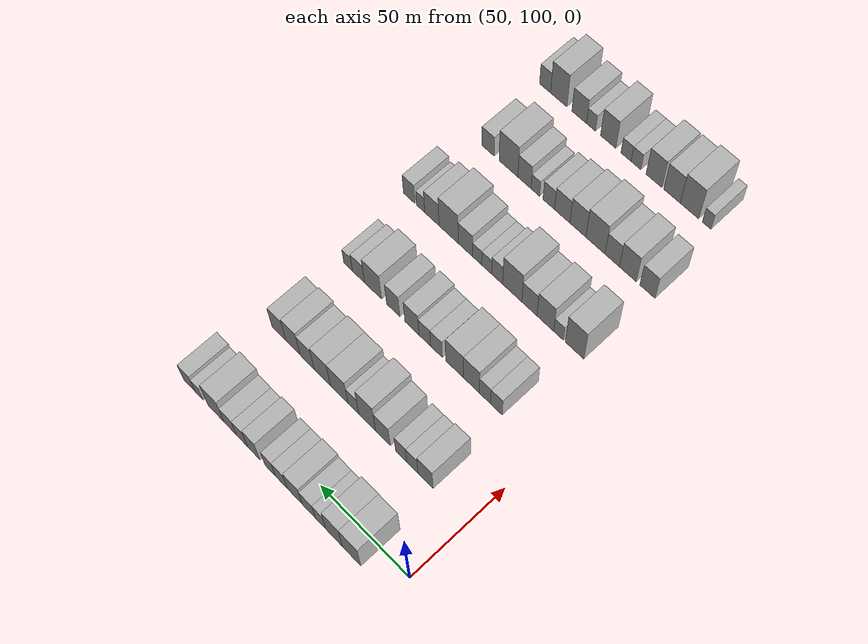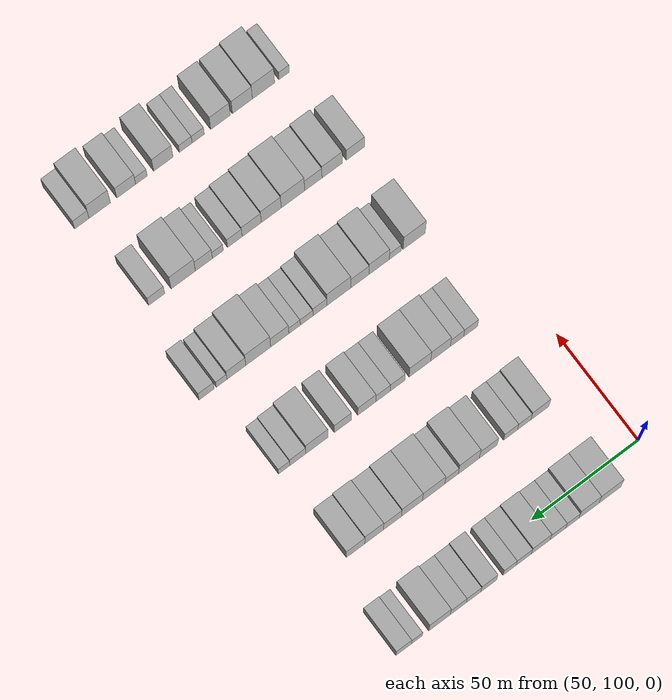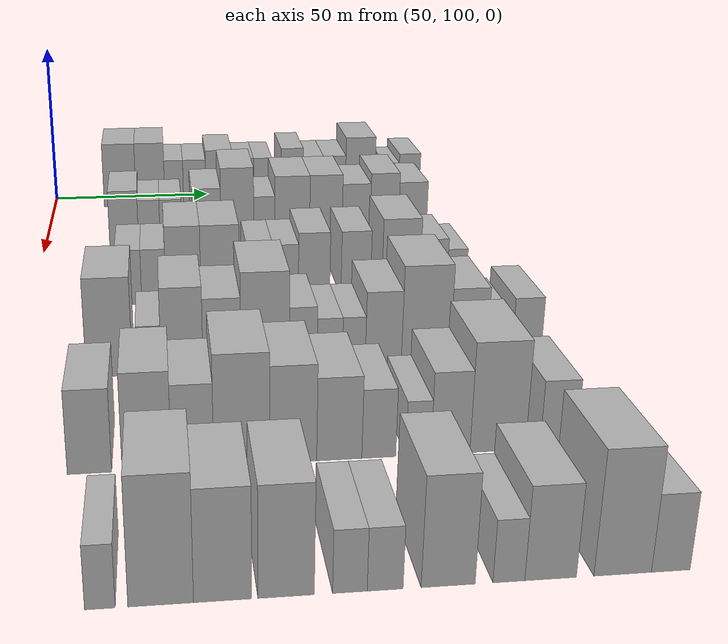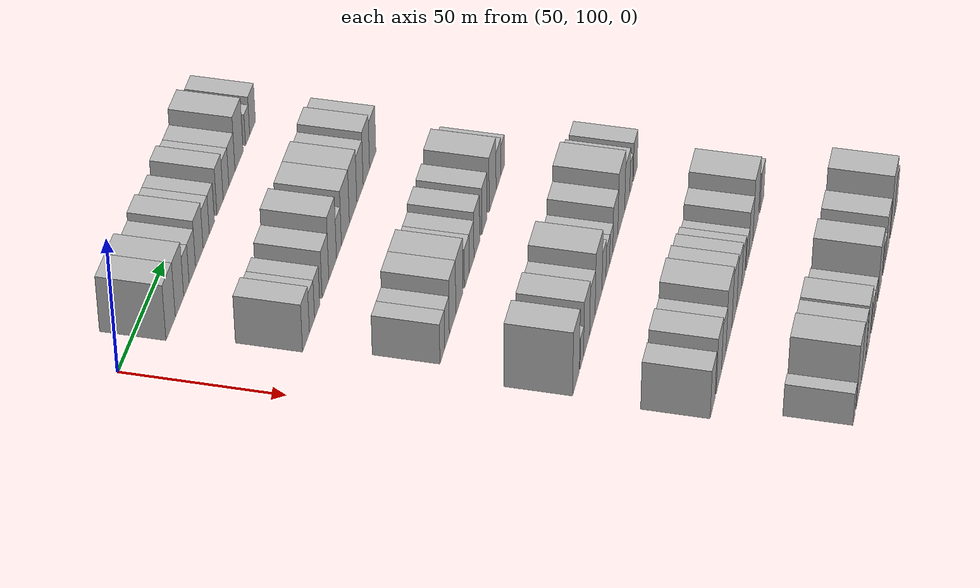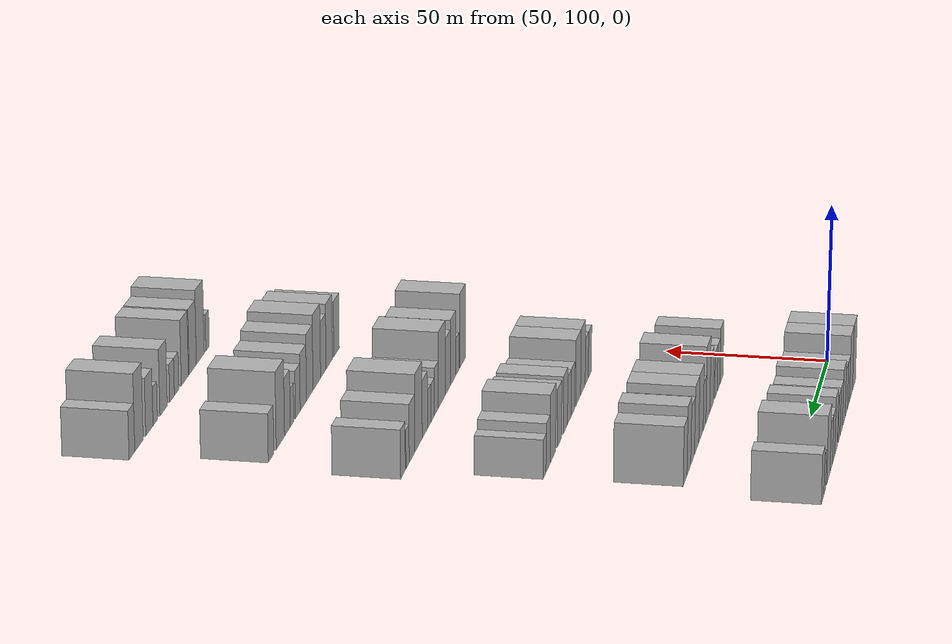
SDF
<sdf version="1.6">
 <world name="default">
  <model name="building_79">
   <static>1</static>
   <pose>50.0000 121.1111 0 0.000000 0.000000 0.000000</pose>
   <link name="link">
    <pose>0 0 10.50 0 0 0</pose>
    <collision name="collision"><geometry><box><size>20.0000 10.2820 21.0000</size></box></geometry></collision>
    <visual name="visual">
     <cast_shadows>0</cast_shadows>
     <geometry><box><size>20.0000 10.2820 21.0000</size></box></geometry>
     <material>
      <script>
       <uri>model://HANNAS_wall/materials/scripts</uri>
       <uri>model://HANNAS_wall/materials/textures</uri>
       <name>vrc/HANNAS_wall</name>
      </script>
     </material>
    </visual>
   </link>
  </model>
  <model name="building_80">
   <static>1</static>
   <pose>50.0000 130.9271 0 0.000000 0.000000 0.000000</pose>
   <link name="link">
    <pose>0 0 10.50 0 0 0</pose>
    <collision name="collision"><geometry><box><size>20.0000 9.3499 21.0000</size></box></geometry></collision>
    <visual name="visual">
     <cast_shadows>0</cast_shadows>
     <geometry><box><size>20.0000 9.3499 21.0000</size></box></geometry>
     <material>
      <script>
       <uri>model://HANNAS_wall/materials/scripts</uri>
       <uri>model://HANNAS_wall/materials/textures</uri>
       <name>vrc/HANNAS_wall</name>
      </script>
     </material>
    </visual>
   </link>
  </model>
  <model name="building_81">
   <static>1</static>
   <pose>50.0000 138.6464 0 0.000000 0.000000 0.000000</pose>
   <link name="link">
    <pose>0 0 7.50 0 0 0</pose>
    <collision name="collision"><geometry><box><size>20.0000 6.0887 15.0000</size></box></geometry></collision>
    <visual name="visual">
     <cast_shadows>0</cast_shadows>
     <geometry><box><size>20.0000 6.0887 15.0000</size></box></geometry>
     <material>
      <script>
       <uri>model://HANNAS_wall/materials/scripts</uri>
       <uri>model://HANNAS_wall/materials/textures</uri>
       <name>vrc/HANNAS_wall</name>
      </script>
     </material>
    </visual>
   </link>
  </model>
  <model name="building_82">
   <static>1</static>
   <pose>50.0000 145.3490 0 0.000000 0.000000 0.000000</pose>
   <link name="link">
    <pose>0 0 7.50 0 0 0</pose>
    <collision name="collision"><geometry><box><size>20.0000 7.3165 15.0000</size></box></geometry></collision>
    <visual name="visual">
     <cast_shadows>0</cast_shadows>
     <geometry><box><size>20.0000 7.3165 15.0000</size></box></geometry>
     <material>
      <script>
       <uri>model://HANNAS_wall/materials/scripts</uri>
       <uri>model://HANNAS_wall/materials/textures</uri>
       <name>vrc/HANNAS_wall</name>
      </script>
     </material>
    </visual>
   </link>
  </model>
  <model name="building_83">
   <static>1</static>
   <pose>50.0000 153.3246 0 0.000000 0.000000 0.000000</pose>
   <link name="link">
    <pose>0 0 9.00 0 0 0</pose>
    <collision name="collision"><geometry><box><size>20.0000 8.6346 18.0000</size></box></geometry></collision>
    <visual name="visual">
     <cast_shadows>0</cast_shadows>
     <geometry><box><size>20.0000 8.6346 18.0000</size></box></geometry>
     <material>
      <script>
       <uri>model://HANNAS_wall/materials/scripts</uri>
       <uri>model://HANNAS_wall/materials/textures</uri>
       <name>vrc/HANNAS_wall</name>
      </script>
     </material>
    </visual>
   </link>
  </model>
  <model name="building_84">
   <static>1</static>
   <pose>50.0000 161.2024 0 0.000000 0.000000 0.000000</pose>
   <link name="link">
    <pose>0 0 7.50 0 0 0</pose>
    <collision name="collision"><geometry><box><size>20.0000 7.1211 15.0000</size></box></geometry></collision>
    <visual name="visual">
     <cast_shadows>0</cast_shadows>
     <geometry><box><size>20.0000 7.1211 15.0000</size></box></geometry>
     <material>
      <script>
       <uri>model://HANNAS_wall/materials/scripts</uri>
       <uri>model://HANNAS_wall/materials/textures</uri>
       <name>vrc/HANNAS_wall</name>
      </script>
     </material>
    </visual>
   </link>
  </model>
  <model name="building_85">
   <static>1</static>
   <pose>50.0000 167.7683 0 0.000000 0.000000 0.000000</pose>
   <link name="link">
    <pose>0 0 7.50 0 0 0</pose>
    <collision name="collision"><geometry><box><size>20.0000 6.0107 15.0000</size></box></geometry></collision>
    <visual name="visual">
     <cast_shadows>0</cast_shadows>
     <geometry><box><size>20.0000 6.0107 15.0000</size></box></geometry>
     <material>
      <script>
       <uri>model://HANNAS_wall/materials/scripts</uri>
       <uri>model://HANNAS_wall/materials/textures</uri>
       <name>vrc/HANNAS_wall</name>
      </script>
     </material>
    </visual>
   </link>
  </model>
  <model name="building_86">
   <static>1</static>
   <pose>50.0000 177.4359 0 0.000000 0.000000 0.000000</pose>
   <link name="link">
    <pose>0 0 9.00 0 0 0</pose>
    <collision name="collision"><geometry><box><size>20.0000 7.3245 18.0000</size></box></geometry></collision>
    <visual name="visual">
     <cast_shadows>0</cast_shadows>
     <geometry><box><size>20.0000 7.3245 18.0000</size></box></geometry>
     <material>
      <script>
       <uri>model://HANNAS_wall/materials/scripts</uri>
       <uri>model://HANNAS_wall/materials/textures</uri>
       <name>vrc/HANNAS_wall</name>
      </script>
     </material>
    </visual>
   </link>
  </model>
  <model name="building_87">
   <static>1</static>
   <pose>50.0000 184.4694 0 0.000000 0.000000 0.000000</pose>
   <link name="link">
    <pose>0 0 7.50 0 0 0</pose>
    <collision name="collision"><geometry><box><size>20.0000 6.7424 15.0000</size></box></geometry></collision>
    <visual name="visual">
     <cast_shadows>0</cast_shadows>
     <geometry><box><size>20.0000 6.7424 15.0000</size></box></geometry>
     <material>
      <script>
       <uri>model://HANNAS_wall/materials/scripts</uri>
       <uri>model://HANNAS_wall/materials/textures</uri>
       <name>vrc/HANNAS_wall</name>
      </script>
     </material>
    </visual>
   </link>
  </model>
  <model name="building_88">
   <static>1</static>
   <pose>50.0000 191.5451 0 0.000000 0.000000 0.000000</pose>
   <link name="link">
    <pose>0 0 7.50 0 0 0</pose>
    <collision name="collision"><geometry><box><size>20.0000 7.4091 15.0000</size></box></geometry></collision>
    <visual name="visual">
     <cast_shadows>0</cast_shadows>
     <geometry><box><size>20.0000 7.4091 15.0000</size></box></geometry>
     <material>
      <script>
       <uri>model://HANNAS_wall/materials/scripts</uri>
       <uri>model://HANNAS_wall/materials/textures</uri>
       <name>vrc/HANNAS_wall</name>
      </script>
     </material>
    </visual>
   </link>
  </model>
  <model name="building_89">
   <static>1</static>
   <pose>50.0000 200.1826 0 0.000000 0.000000 0.000000</pose>
   <link name="link">
    <pose>0 0 10.50 0 0 0</pose>
    <collision name="collision"><geometry><box><size>20.0000 9.8660 21.0000</size></box></geometry></collision>
    <visual name="visual">
     <cast_shadows>0</cast_shadows>
     <geometry><box><size>20.0000 9.8660 21.0000</size></box></geometry>
     <material>
      <script>
       <uri>model://HANNAS_wall/materials/scripts</uri>
       <uri>model://HANNAS_wall/materials/textures</uri>
       <name>vrc/HANNAS_wall</name>
      </script>
     </material>
    </visual>
   </link>
  </model>
  <model name="building_90">
   <static>1</static>
   <pose>50.0000 210.6461 0 0.000000 0.000000 0.000000</pose>
   <link name="link">
    <pose>0 0 6.00 0 0 0</pose>
    <collision name="collision"><geometry><box><size>20.0000 5.0610 12.0000</size></box></geometry></collision>
    <visual name="visual">
     <cast_shadows>0</cast_shadows>
     <geometry><box><size>20.0000 5.0610 12.0000</size></box></geometry>
     <material>
      <script>
       <uri>model://HANNAS_wall/materials/scripts</uri>
       <uri>model://HANNAS_wall/materials/textures</uri>
       <name>vrc/HANNAS_wall</name>
      </script>
     </material>
    </visual>
   </link>
  </model>
  <model name="building_91">
   <static>1</static>
   <pose>50.0000 216.7208 0 0.000000 0.000000 0.000000</pose>
   <link name="link">
    <pose>0 0 7.50 0 0 0</pose>
    <collision name="collision"><geometry><box><size>20.0000 7.0883 15.0000</size></box></geometry></collision>
    <visual name="visual">
     <cast_shadows>0</cast_shadows>
     <geometry><box><size>20.0000 7.0883 15.0000</size></box></geometry>
     <material>
      <script>
       <uri>model://HANNAS_wall/materials/scripts</uri>
       <uri>model://HANNAS_wall/materials/textures</uri>
       <name>vrc/HANNAS_wall</name>
      </script>
     </material>
    </visual>
   </link>
  </model>
  <model name="building_220">
   <static>1</static>
   <pose>90.0000 123.2064 0 0.000000 0.000000 0.000000</pose>
   <link name="link">
    <pose>0 0 9.00 0 0 0</pose>
    <collision name="collision"><geometry><box><size>20.0000 8.3586 18.0000</size></box></geometry></collision>
    <visual name="visual">
     <cast_shadows>0</cast_shadows>
     <geometry><box><size>20.0000 8.3586 18.0000</size></box></geometry>
     <material>
      <script>
       <uri>model://HANNAS_wall/materials/scripts</uri>
       <uri>model://HANNAS_wall/materials/textures</uri>
       <name>vrc/HANNAS_wall</name>
      </script>
     </material>
    </visual>
   </link>
  </model>
  <model name="building_221">
   <static>1</static>
   <pose>90.0000 130.5374 0 0.000000 0.000000 0.000000</pose>
   <link name="link">
    <pose>0 0 7.50 0 0 0</pose>
    <collision name="collision"><geometry><box><size>20.0000 6.3033 15.0000</size></box></geometry></collision>
    <visual name="visual">
     <cast_shadows>0</cast_shadows>
     <geometry><box><size>20.0000 6.3033 15.0000</size></box></geometry>
     <material>
      <script>
       <uri>model://HANNAS_wall/materials/scripts</uri>
       <uri>model://HANNAS_wall/materials/textures</uri>
       <name>vrc/HANNAS_wall</name>
      </script>
     </material>
    </visual>
   </link>
  </model>
  <model name="building_222">
   <static>1</static>
   <pose>90.0000 136.8858 0 0.000000 0.000000 0.000000</pose>
   <link name="link">
    <pose>0 0 7.50 0 0 0</pose>
    <collision name="collision"><geometry><box><size>20.0000 6.3935 15.0000</size></box></geometry></collision>
    <visual name="visual">
     <cast_shadows>0</cast_shadows>
     <geometry><box><size>20.0000 6.3935 15.0000</size></box></geometry>
     <material>
      <script>
       <uri>model://HANNAS_wall/materials/scripts</uri>
       <uri>model://HANNAS_wall/materials/textures</uri>
       <name>vrc/HANNAS_wall</name>
      </script>
     </material>
    </visual>
   </link>
  </model>
  <model name="building_223">
   <static>1</static>
   <pose>90.0000 147.2890 0 0.000000 0.000000 0.000000</pose>
   <link name="link">
    <pose>0 0 9.00 0 0 0</pose>
    <collision name="collision"><geometry><box><size>20.0000 8.4129 18.0000</size></box></geometry></collision>
    <visual name="visual">
     <cast_shadows>0</cast_shadows>
     <geometry><box><size>20.0000 8.4129 18.0000</size></box></geometry>
     <material>
      <script>
       <uri>model://HANNAS_wall/materials/scripts</uri>
       <uri>model://HANNAS_wall/materials/textures</uri>
       <name>vrc/HANNAS_wall</name>
      </script>
     </material>
    </visual>
   </link>
  </model>
  <model name="building_224">
   <static>1</static>
   <pose>90.0000 156.3557 0 0.000000 0.000000 0.000000</pose>
   <link name="link">
    <pose>0 0 12.00 0 0 0</pose>
    <collision name="collision"><geometry><box><size>20.0000 9.7206 24.0000</size></box></geometry></collision>
    <visual name="visual">
     <cast_shadows>0</cast_shadows>
     <geometry><box><size>20.0000 9.7206 24.0000</size></box></geometry>
     <material>
      <script>
       <uri>model://HANNAS_wall/materials/scripts</uri>
       <uri>model://HANNAS_wall/materials/textures</uri>
       <name>vrc/HANNAS_wall</name>
      </script>
     </material>
    </visual>
   </link>
  </model>
  <model name="building_225">
   <static>1</static>
   <pose>90.0000 164.3611 0 0.000000 0.000000 0.000000</pose>
   <link name="link">
    <pose>0 0 7.50 0 0 0</pose>
    <collision name="collision"><geometry><box><size>20.0000 6.2902 15.0000</size></box></geometry></collision>
    <visual name="visual">
     <cast_shadows>0</cast_shadows>
     <geometry><box><size>20.0000 6.2902 15.0000</size></box></geometry>
     <material>
      <script>
       <uri>model://HANNAS_wall/materials/scripts</uri>
       <uri>model://HANNAS_wall/materials/textures</uri>
       <name>vrc/HANNAS_wall</name>
      </script>
     </material>
    </visual>
   </link>
  </model>
  <model name="building_226">
   <static>1</static>
   <pose>90.0000 172.6828 0 0.000000 0.000000 0.000000</pose>
   <link name="link">
    <pose>0 0 10.50 0 0 0</pose>
    <collision name="collision"><geometry><box><size>20.0000 10.3533 21.0000</size></box></geometry></collision>
    <visual name="visual">
     <cast_shadows>0</cast_shadows>
     <geometry><box><size>20.0000 10.3533 21.0000</size></box></geometry>
     <material>
      <script>
       <uri>model://HANNAS_wall/materials/scripts</uri>
       <uri>model://HANNAS_wall/materials/textures</uri>
       <name>vrc/HANNAS_wall</name>
      </script>
     </material>
    </visual>
   </link>
  </model>
  <model name="building_227">
   <static>1</static>
   <pose>90.0000 182.7283 0 0.000000 0.000000 0.000000</pose>
   <link name="link">
    <pose>0 0 10.50 0 0 0</pose>
    <collision name="collision"><geometry><box><size>20.0000 9.7376 21.0000</size></box></geometry></collision>
    <visual name="visual">
     <cast_shadows>0</cast_shadows>
     <geometry><box><size>20.0000 9.7376 21.0000</size></box></geometry>
     <material>
      <script>
       <uri>model://HANNAS_wall/materials/scripts</uri>
       <uri>model://HANNAS_wall/materials/textures</uri>
       <name>vrc/HANNAS_wall</name>
      </script>
     </material>
    </visual>
   </link>
  </model>
  <model name="building_228">
   <static>1</static>
   <pose>90.0000 191.8028 0 0.000000 0.000000 0.000000</pose>
   <link name="link">
    <pose>0 0 9.00 0 0 0</pose>
    <collision name="collision"><geometry><box><size>20.0000 8.4115 18.0000</size></box></geometry></collision>
    <visual name="visual">
     <cast_shadows>0</cast_shadows>
     <geometry><box><size>20.0000 8.4115 18.0000</size></box></geometry>
     <material>
      <script>
       <uri>model://HANNAS_wall/materials/scripts</uri>
       <uri>model://HANNAS_wall/materials/textures</uri>
       <name>vrc/HANNAS_wall</name>
      </script>
     </material>
    </visual>
   </link>
  </model>
  <model name="building_229">
   <static>1</static>
   <pose>90.0000 200.2996 0 0.000000 0.000000 0.000000</pose>
   <link name="link">
    <pose>0 0 10.50 0 0 0</pose>
    <collision name="collision"><geometry><box><size>20.0000 8.5821 21.0000</size></box></geometry></collision>
    <visual name="visual">
     <cast_shadows>0</cast_shadows>
     <geometry><box><size>20.0000 8.5821 21.0000</size></box></geometry>
     <material>
      <script>
       <uri>model://HANNAS_wall/materials/scripts</uri>
       <uri>model://HANNAS_wall/materials/textures</uri>
       <name>vrc/HANNAS_wall</name>
      </script>
     </material>
    </visual>
   </link>
  </model>
  <model name="building_230">
   <static>1</static>
   <pose>90.0000 208.8483 0 0.000000 0.000000 0.000000</pose>
   <link name="link">
    <pose>0 0 9.00 0 0 0</pose>
    <collision name="collision"><geometry><box><size>20.0000 8.5152 18.0000</size></box></geometry></collision>
    <visual name="visual">
     <cast_shadows>0</cast_shadows>
     <geometry><box><size>20.0000 8.5152 18.0000</size></box></geometry>
     <material>
      <script>
       <uri>model://HANNAS_wall/materials/scripts</uri>
       <uri>model://HANNAS_wall/materials/textures</uri>
       <name>vrc/HANNAS_wall</name>
      </script>
     </material>
    </visual>
   </link>
  </model>
  <model name="building_355">
   <static>1</static>
   <pose>130.0000 125.1906 0 0.000000 0.000000 0.000000</pose>
   <link name="link">
    <pose>0 0 7.50 0 0 0</pose>
    <collision name="collision"><geometry><box><size>20.0000 6.5130 15.0000</size></box></geometry></collision>
    <visual name="visual">
     <cast_shadows>0</cast_shadows>
     <geometry><box><size>20.0000 6.5130 15.0000</size></box></geometry>
     <material>
      <script>
       <uri>model://HANNAS_wall/materials/scripts</uri>
       <uri>model://HANNAS_wall/materials/textures</uri>
       <name>vrc/HANNAS_wall</name>
      </script>
     </material>
    </visual>
   </link>
  </model>
  <model name="building_356">
   <static>1</static>
   <pose>130.0000 131.5645 0 0.000000 0.000000 0.000000</pose>
   <link name="link">
    <pose>0 0 7.50 0 0 0</pose>
    <collision name="collision"><geometry><box><size>20.0000 6.2347 15.0000</size></box></geometry></collision>
    <visual name="visual">
     <cast_shadows>0</cast_shadows>
     <geometry><box><size>20.0000 6.2347 15.0000</size></box></geometry>
     <material>
      <script>
       <uri>model://HANNAS_wall/materials/scripts</uri>
       <uri>model://HANNAS_wall/materials/textures</uri>
       <name>vrc/HANNAS_wall</name>
      </script>
     </material>
    </visual>
   </link>
  </model>
  <model name="building_357">
   <static>1</static>
   <pose>130.0000 139.2403 0 0.000000 0.000000 0.000000</pose>
   <link name="link">
    <pose>0 0 10.50 0 0 0</pose>
    <collision name="collision"><geometry><box><size>20.0000 9.1169 21.0000</size></box></geometry></collision>
    <visual name="visual">
     <cast_shadows>0</cast_shadows>
     <geometry><box><size>20.0000 9.1169 21.0000</size></box></geometry>
     <material>
      <script>
       <uri>model://HANNAS_wall/materials/scripts</uri>
       <uri>model://HANNAS_wall/materials/textures</uri>
       <name>vrc/HANNAS_wall</name>
      </script>
     </material>
    </visual>
   </link>
  </model>
  <model name="building_358">
   <static>1</static>
   <pose>130.0000 148.8341 0 0.000000 0.000000 0.000000</pose>
   <link name="link">
    <pose>0 0 10.50 0 0 0</pose>
    <collision name="collision"><geometry><box><size>20.0000 10.0709 21.0000</size></box></geometry></collision>
    <visual name="visual">
     <cast_shadows>0</cast_shadows>
     <geometry><box><size>20.0000 10.0709 21.0000</size></box></geometry>
     <material>
      <script>
       <uri>model://HANNAS_wall/materials/scripts</uri>
       <uri>model://HANNAS_wall/materials/textures</uri>
       <name>vrc/HANNAS_wall</name>
      </script>
     </material>
    </visual>
   </link>
  </model>
  <model name="building_359">
   <static>1</static>
   <pose>130.0000 159.2916 0 0.000000 0.000000 0.000000</pose>
   <link name="link">
    <pose>0 0 7.50 0 0 0</pose>
    <collision name="collision"><geometry><box><size>20.0000 6.8441 15.0000</size></box></geometry></collision>
    <visual name="visual">
     <cast_shadows>0</cast_shadows>
     <geometry><box><size>20.0000 6.8441 15.0000</size></box></geometry>
     <material>
      <script>
       <uri>model://HANNAS_wall/materials/scripts</uri>
       <uri>model://HANNAS_wall/materials/textures</uri>
       <name>vrc/HANNAS_wall</name>
      </script>
     </material>
    </visual>
   </link>
  </model>
  <model name="building_360">
   <static>1</static>
   <pose>130.0000 166.0634 0 0.000000 0.000000 0.000000</pose>
   <link name="link">
    <pose>0 0 7.50 0 0 0</pose>
    <collision name="collision"><geometry><box><size>20.0000 6.6996 15.0000</size></box></geometry></collision>
    <visual name="visual">
     <cast_shadows>0</cast_shadows>
     <geometry><box><size>20.0000 6.6996 15.0000</size></box></geometry>
     <material>
      <script>
       <uri>model://HANNAS_wall/materials/scripts</uri>
       <uri>model://HANNAS_wall/materials/textures</uri>
       <name>vrc/HANNAS_wall</name>
      </script>
     </material>
    </visual>
   </link>
  </model>
  <model name="building_361">
   <static>1</static>
   <pose>130.0000 173.5839 0 0.000000 0.000000 0.000000</pose>
   <link name="link">
    <pose>0 0 9.00 0 0 0</pose>
    <collision name="collision"><geometry><box><size>20.0000 8.3412 18.0000</size></box></geometry></collision>
    <visual name="visual">
     <cast_shadows>0</cast_shadows>
     <geometry><box><size>20.0000 8.3412 18.0000</size></box></geometry>
     <material>
      <script>
       <uri>model://HANNAS_wall/materials/scripts</uri>
       <uri>model://HANNAS_wall/materials/textures</uri>
       <name>vrc/HANNAS_wall</name>
      </script>
     </material>
    </visual>
   </link>
  </model>
  <model name="building_362">
   <static>1</static>
   <pose>130.0000 184.7025 0 0.000000 0.000000 0.000000</pose>
   <link name="link">
    <pose>0 0 9.00 0 0 0</pose>
    <collision name="collision"><geometry><box><size>20.0000 7.8959 18.0000</size></box></geometry></collision>
    <visual name="visual">
     <cast_shadows>0</cast_shadows>
     <geometry><box><size>20.0000 7.8959 18.0000</size></box></geometry>
     <material>
      <script>
       <uri>model://HANNAS_wall/materials/scripts</uri>
       <uri>model://HANNAS_wall/materials/textures</uri>
       <name>vrc/HANNAS_wall</name>
      </script>
     </material>
    </visual>
   </link>
  </model>
  <model name="building_363">
   <static>1</static>
   <pose>130.0000 196.7767 0 0.000000 0.000000 0.000000</pose>
   <link name="link">
    <pose>0 0 10.50 0 0 0</pose>
    <collision name="collision"><geometry><box><size>20.0000 10.2525 21.0000</size></box></geometry></collision>
    <visual name="visual">
     <cast_shadows>0</cast_shadows>
     <geometry><box><size>20.0000 10.2525 21.0000</size></box></geometry>
     <material>
      <script>
       <uri>model://HANNAS_wall/materials/scripts</uri>
       <uri>model://HANNAS_wall/materials/textures</uri>
       <name>vrc/HANNAS_wall</name>
      </script>
     </material>
    </visual>
   </link>
  </model>
  <model name="building_364">
   <static>1</static>
   <pose>130.0000 205.5839 0 0.000000 0.000000 0.000000</pose>
   <link name="link">
    <pose>0 0 7.50 0 0 0</pose>
    <collision name="collision"><geometry><box><size>20.0000 7.3619 15.0000</size></box></geometry></collision>
    <visual name="visual">
     <cast_shadows>0</cast_shadows>
     <geometry><box><size>20.0000 7.3619 15.0000</size></box></geometry>
     <material>
      <script>
       <uri>model://HANNAS_wall/materials/scripts</uri>
       <uri>model://HANNAS_wall/materials/textures</uri>
       <name>vrc/HANNAS_wall</name>
      </script>
     </material>
    </visual>
   </link>
  </model>
  <model name="building_365">
   <static>1</static>
   <pose>130.0000 211.8919 0 0.000000 0.000000 0.000000</pose>
   <link name="link">
    <pose>0 0 6.00 0 0 0</pose>
    <collision name="collision"><geometry><box><size>20.0000 5.2543 12.0000</size></box></geometry></collision>
    <visual name="visual">
     <cast_shadows>0</cast_shadows>
     <geometry><box><size>20.0000 5.2543 12.0000</size></box></geometry>
     <material>
      <script>
       <uri>model://HANNAS_wall/materials/scripts</uri>
       <uri>model://HANNAS_wall/materials/textures</uri>
       <name>vrc/HANNAS_wall</name>
      </script>
     </material>
    </visual>
   </link>
  </model>
  <model name="building_493">
   <static>1</static>
   <pose>170.0000 121.3957 0 0.000000 0.000000 0.000000</pose>
   <link name="link">
    <pose>0 0 12.00 0 0 0</pose>
    <collision name="collision"><geometry><box><size>20.0000 10.3453 24.0000</size></box></geometry></collision>
    <visual name="visual">
     <cast_shadows>0</cast_shadows>
     <geometry><box><size>20.0000 10.3453 24.0000</size></box></geometry>
     <material>
      <script>
       <uri>model://HANNAS_wall/materials/scripts</uri>
       <uri>model://HANNAS_wall/materials/textures</uri>
       <name>vrc/HANNAS_wall</name>
      </script>
     </material>
    </visual>
   </link>
  </model>
  <model name="building_494">
   <static>1</static>
   <pose>170.0000 130.3082 0 0.000000 0.000000 0.000000</pose>
   <link name="link">
    <pose>0 0 6.00 0 0 0</pose>
    <collision name="collision"><geometry><box><size>20.0000 5.4796 12.0000</size></box></geometry></collision>
    <visual name="visual">
     <cast_shadows>0</cast_shadows>
     <geometry><box><size>20.0000 5.4796 12.0000</size></box></geometry>
     <material>
      <script>
       <uri>model://HANNAS_wall/materials/scripts</uri>
       <uri>model://HANNAS_wall/materials/textures</uri>
       <name>vrc/HANNAS_wall</name>
      </script>
     </material>
    </visual>
   </link>
  </model>
  <model name="building_495">
   <static>1</static>
   <pose>170.0000 137.7744 0 0.000000 0.000000 0.000000</pose>
   <link name="link">
    <pose>0 0 10.50 0 0 0</pose>
    <collision name="collision"><geometry><box><size>20.0000 9.4528 21.0000</size></box></geometry></collision>
    <visual name="visual">
     <cast_shadows>0</cast_shadows>
     <geometry><box><size>20.0000 9.4528 21.0000</size></box></geometry>
     <material>
      <script>
       <uri>model://HANNAS_wall/materials/scripts</uri>
       <uri>model://HANNAS_wall/materials/textures</uri>
       <name>vrc/HANNAS_wall</name>
      </script>
     </material>
    </visual>
   </link>
  </model>
  <model name="building_496">
   <static>1</static>
   <pose>170.0000 146.8106 0 0.000000 0.000000 0.000000</pose>
   <link name="link">
    <pose>0 0 9.00 0 0 0</pose>
    <collision name="collision"><geometry><box><size>20.0000 8.6198 18.0000</size></box></geometry></collision>
    <visual name="visual">
     <cast_shadows>0</cast_shadows>
     <geometry><box><size>20.0000 8.6198 18.0000</size></box></geometry>
     <material>
      <script>
       <uri>model://HANNAS_wall/materials/scripts</uri>
       <uri>model://HANNAS_wall/materials/textures</uri>
       <name>vrc/HANNAS_wall</name>
      </script>
     </material>
    </visual>
   </link>
  </model>
  <model name="building_497">
   <static>1</static>
   <pose>170.0000 156.6795 0 0.000000 0.000000 0.000000</pose>
   <link name="link">
    <pose>0 0 12.00 0 0 0</pose>
    <collision name="collision"><geometry><box><size>20.0000 11.1180 24.0000</size></box></geometry></collision>
    <visual name="visual">
     <cast_shadows>0</cast_shadows>
     <geometry><box><size>20.0000 11.1180 24.0000</size></box></geometry>
     <material>
      <script>
       <uri>model://HANNAS_wall/materials/scripts</uri>
       <uri>model://HANNAS_wall/materials/textures</uri>
       <name>vrc/HANNAS_wall</name>
      </script>
     </material>
    </visual>
   </link>
  </model>
  <model name="building_498">
   <static>1</static>
   <pose>170.0000 165.4487 0 0.000000 0.000000 0.000000</pose>
   <link name="link">
    <pose>0 0 7.50 0 0 0</pose>
    <collision name="collision"><geometry><box><size>20.0000 6.4203 15.0000</size></box></geometry></collision>
    <visual name="visual">
     <cast_shadows>0</cast_shadows>
     <geometry><box><size>20.0000 6.4203 15.0000</size></box></geometry>
     <material>
      <script>
       <uri>model://HANNAS_wall/materials/scripts</uri>
       <uri>model://HANNAS_wall/materials/textures</uri>
       <name>vrc/HANNAS_wall</name>
      </script>
     </material>
    </visual>
   </link>
  </model>
  <model name="building_499">
   <static>1</static>
   <pose>170.0000 171.6054 0 0.000000 0.000000 0.000000</pose>
   <link name="link">
    <pose>0 0 6.00 0 0 0</pose>
    <collision name="collision"><geometry><box><size>20.0000 5.8931 12.0000</size></box></geometry></collision>
    <visual name="visual">
     <cast_shadows>0</cast_shadows>
     <geometry><box><size>20.0000 5.8931 12.0000</size></box></geometry>
     <material>
      <script>
       <uri>model://HANNAS_wall/materials/scripts</uri>
       <uri>model://HANNAS_wall/materials/textures</uri>
       <name>vrc/HANNAS_wall</name>
      </script>
     </material>
    </visual>
   </link>
  </model>
  <model name="building_500">
   <static>1</static>
   <pose>170.0000 177.2197 0 0.000000 0.000000 0.000000</pose>
   <link name="link">
    <pose>0 0 6.00 0 0 0</pose>
    <collision name="collision"><geometry><box><size>20.0000 5.3356 12.0000</size></box></geometry></collision>
    <visual name="visual">
     <cast_shadows>0</cast_shadows>
     <geometry><box><size>20.0000 5.3356 12.0000</size></box></geometry>
     <material>
      <script>
       <uri>model://HANNAS_wall/materials/scripts</uri>
       <uri>model://HANNAS_wall/materials/textures</uri>
       <name>vrc/HANNAS_wall</name>
      </script>
     </material>
    </visual>
   </link>
  </model>
  <model name="building_501">
   <static>1</static>
   <pose>170.0000 184.1229 0 0.000000 0.000000 0.000000</pose>
   <link name="link">
    <pose>0 0 9.00 0 0 0</pose>
    <collision name="collision"><geometry><box><size>20.0000 8.4709 18.0000</size></box></geometry></collision>
    <visual name="visual">
     <cast_shadows>0</cast_shadows>
     <geometry><box><size>20.0000 8.4709 18.0000</size></box></geometry>
     <material>
      <script>
       <uri>model://HANNAS_wall/materials/scripts</uri>
       <uri>model://HANNAS_wall/materials/textures</uri>
       <name>vrc/HANNAS_wall</name>
      </script>
     </material>
    </visual>
   </link>
  </model>
  <model name="building_502">
   <static>1</static>
   <pose>170.0000 194.1179 0 0.000000 0.000000 0.000000</pose>
   <link name="link">
    <pose>0 0 12.00 0 0 0</pose>
    <collision name="collision"><geometry><box><size>20.0000 11.5191 24.0000</size></box></geometry></collision>
    <visual name="visual">
     <cast_shadows>0</cast_shadows>
     <geometry><box><size>20.0000 11.5191 24.0000</size></box></geometry>
     <material>
      <script>
       <uri>model://HANNAS_wall/materials/scripts</uri>
       <uri>model://HANNAS_wall/materials/textures</uri>
       <name>vrc/HANNAS_wall</name>
      </script>
     </material>
    </visual>
   </link>
  </model>
  <model name="building_503">
   <static>1</static>
   <pose>170.0000 204.2485 0 0.000000 0.000000 0.000000</pose>
   <link name="link">
    <pose>0 0 9.00 0 0 0</pose>
    <collision name="collision"><geometry><box><size>20.0000 8.7421 18.0000</size></box></geometry></collision>
    <visual name="visual">
     <cast_shadows>0</cast_shadows>
     <geometry><box><size>20.0000 8.7421 18.0000</size></box></geometry>
     <material>
      <script>
       <uri>model://HANNAS_wall/materials/scripts</uri>
       <uri>model://HANNAS_wall/materials/textures</uri>
       <name>vrc/HANNAS_wall</name>
      </script>
     </material>
    </visual>
   </link>
  </model>
  <model name="building_504">
   <static>1</static>
   <pose>170.0000 211.1005 0 0.000000 0.000000 0.000000</pose>
   <link name="link">
    <pose>0 0 6.00 0 0 0</pose>
    <collision name="collision"><geometry><box><size>20.0000 4.9620 12.0000</size></box></geometry></collision>
    <visual name="visual">
     <cast_shadows>0</cast_shadows>
     <geometry><box><size>20.0000 4.9620 12.0000</size></box></geometry>
     <material>
      <script>
       <uri>model://HANNAS_wall/materials/scripts</uri>
       <uri>model://HANNAS_wall/materials/textures</uri>
       <name>vrc/HANNAS_wall</name>
      </script>
     </material>
    </visual>
   </link>
  </model>
  <model name="building_505">
   <static>1</static>
   <pose>170.0000 218.0804 0 0.000000 0.000000 0.000000</pose>
   <link name="link">
    <pose>0 0 7.50 0 0 0</pose>
    <collision name="collision"><geometry><box><size>20.0000 6.9977 15.0000</size></box></geometry></collision>
    <visual name="visual">
     <cast_shadows>0</cast_shadows>
     <geometry><box><size>20.0000 6.9977 15.0000</size></box></geometry>
     <material>
      <script>
       <uri>model://HANNAS_wall/materials/scripts</uri>
       <uri>model://HANNAS_wall/materials/textures</uri>
       <name>vrc/HANNAS_wall</name>
      </script>
     </material>
    </visual>
   </link>
  </model>
  <model name="building_629">
   <static>1</static>
   <pose>210.0000 118.8618 0 0.000000 0.000000 0.000000</pose>
   <link name="link">
    <pose>0 0 9.00 0 0 0</pose>
    <collision name="collision"><geometry><box><size>20.0000 8.4467 18.0000</size></box></geometry></collision>
    <visual name="visual">
     <cast_shadows>0</cast_shadows>
     <geometry><box><size>20.0000 8.4467 18.0000</size></box></geometry>
     <material>
      <script>
       <uri>model://HANNAS_wall/materials/scripts</uri>
       <uri>model://HANNAS_wall/materials/textures</uri>
       <name>vrc/HANNAS_wall</name>
      </script>
     </material>
    </visual>
   </link>
  </model>
  <model name="building_630">
   <static>1</static>
   <pose>210.0000 129.7994 0 0.000000 0.000000 0.000000</pose>
   <link name="link">
    <pose>0 0 10.50 0 0 0</pose>
    <collision name="collision"><geometry><box><size>20.0000 9.4285 21.0000</size></box></geometry></collision>
    <visual name="visual">
     <cast_shadows>0</cast_shadows>
     <geometry><box><size>20.0000 9.4285 21.0000</size></box></geometry>
     <material>
      <script>
       <uri>model://HANNAS_wall/materials/scripts</uri>
       <uri>model://HANNAS_wall/materials/textures</uri>
       <name>vrc/HANNAS_wall</name>
      </script>
     </material>
    </visual>
   </link>
  </model>
  <model name="building_631">
   <static>1</static>
   <pose>210.0000 138.6026 0 0.000000 0.000000 0.000000</pose>
   <link name="link">
    <pose>0 0 9.00 0 0 0</pose>
    <collision name="collision"><geometry><box><size>20.0000 8.1780 18.0000</size></box></geometry></collision>
    <visual name="visual">
     <cast_shadows>0</cast_shadows>
     <geometry><box><size>20.0000 8.1780 18.0000</size></box></geometry>
     <material>
      <script>
       <uri>model://HANNAS_wall/materials/scripts</uri>
       <uri>model://HANNAS_wall/materials/textures</uri>
       <name>vrc/HANNAS_wall</name>
      </script>
     </material>
    </visual>
   </link>
  </model>
  <model name="building_632">
   <static>1</static>
   <pose>210.0000 148.1608 0 0.000000 0.000000 0.000000</pose>
   <link name="link">
    <pose>0 0 12.00 0 0 0</pose>
    <collision name="collision"><geometry><box><size>20.0000 10.9383 24.0000</size></box></geometry></collision>
    <visual name="visual">
     <cast_shadows>0</cast_shadows>
     <geometry><box><size>20.0000 10.9383 24.0000</size></box></geometry>
     <material>
      <script>
       <uri>model://HANNAS_wall/materials/scripts</uri>
       <uri>model://HANNAS_wall/materials/textures</uri>
       <name>vrc/HANNAS_wall</name>
      </script>
     </material>
    </visual>
   </link>
  </model>
  <model name="building_633">
   <static>1</static>
   <pose>210.0000 158.2588 0 0.000000 0.000000 0.000000</pose>
   <link name="link">
    <pose>0 0 10.50 0 0 0</pose>
    <collision name="collision"><geometry><box><size>20.0000 9.2578 21.0000</size></box></geometry></collision>
    <visual name="visual">
     <cast_shadows>0</cast_shadows>
     <geometry><box><size>20.0000 9.2578 21.0000</size></box></geometry>
     <material>
      <script>
       <uri>model://HANNAS_wall/materials/scripts</uri>
       <uri>model://HANNAS_wall/materials/textures</uri>
       <name>vrc/HANNAS_wall</name>
      </script>
     </material>
    </visual>
   </link>
  </model>
  <model name="building_634">
   <static>1</static>
   <pose>210.0000 167.3702 0 0.000000 0.000000 0.000000</pose>
   <link name="link">
    <pose>0 0 9.00 0 0 0</pose>
    <collision name="collision"><geometry><box><size>20.0000 8.9650 18.0000</size></box></geometry></collision>
    <visual name="visual">
     <cast_shadows>0</cast_shadows>
     <geometry><box><size>20.0000 8.9650 18.0000</size></box></geometry>
     <material>
      <script>
       <uri>model://HANNAS_wall/materials/scripts</uri>
       <uri>model://HANNAS_wall/materials/textures</uri>
       <name>vrc/HANNAS_wall</name>
      </script>
     </material>
    </visual>
   </link>
  </model>
  <model name="building_635">
   <static>1</static>
   <pose>210.0000 175.2345 0 0.000000 0.000000 0.000000</pose>
   <link name="link">
    <pose>0 0 7.50 0 0 0</pose>
    <collision name="collision"><geometry><box><size>20.0000 6.7636 15.0000</size></box></geometry></collision>
    <visual name="visual">
     <cast_shadows>0</cast_shadows>
     <geometry><box><size>20.0000 6.7636 15.0000</size></box></geometry>
     <material>
      <script>
       <uri>model://HANNAS_wall/materials/scripts</uri>
       <uri>model://HANNAS_wall/materials/textures</uri>
       <name>vrc/HANNAS_wall</name>
      </script>
     </material>
    </visual>
   </link>
  </model>
  <model name="building_636">
   <static>1</static>
   <pose>210.0000 183.1445 0 0.000000 0.000000 0.000000</pose>
   <link name="link">
    <pose>0 0 6.00 0 0 0</pose>
    <collision name="collision"><geometry><box><size>20.0000 5.0562 12.0000</size></box></geometry></collision>
    <visual name="visual">
     <cast_shadows>0</cast_shadows>
     <geometry><box><size>20.0000 5.0562 12.0000</size></box></geometry>
     <material>
      <script>
       <uri>model://HANNAS_wall/materials/scripts</uri>
       <uri>model://HANNAS_wall/materials/textures</uri>
       <name>vrc/HANNAS_wall</name>
      </script>
     </material>
    </visual>
   </link>
  </model>
  <model name="building_637">
   <static>1</static>
   <pose>210.0000 189.6236 0 0.000000 0.000000 0.000000</pose>
   <link name="link">
    <pose>0 0 9.00 0 0 0</pose>
    <collision name="collision"><geometry><box><size>20.0000 7.9020 18.0000</size></box></geometry></collision>
    <visual name="visual">
     <cast_shadows>0</cast_shadows>
     <geometry><box><size>20.0000 7.9020 18.0000</size></box></geometry>
     <material>
      <script>
       <uri>model://HANNAS_wall/materials/scripts</uri>
       <uri>model://HANNAS_wall/materials/textures</uri>
       <name>vrc/HANNAS_wall</name>
      </script>
     </material>
    </visual>
   </link>
  </model>
  <model name="building_638">
   <static>1</static>
   <pose>210.0000 199.2311 0 0.000000 0.000000 0.000000</pose>
   <link name="link">
    <pose>0 0 12.00 0 0 0</pose>
    <collision name="collision"><geometry><box><size>20.0000 11.3130 24.0000</size></box></geometry></collision>
    <visual name="visual">
     <cast_shadows>0</cast_shadows>
     <geometry><box><size>20.0000 11.3130 24.0000</size></box></geometry>
     <material>
      <script>
       <uri>model://HANNAS_wall/materials/scripts</uri>
       <uri>model://HANNAS_wall/materials/textures</uri>
       <name>vrc/HANNAS_wall</name>
      </script>
     </material>
    </visual>
   </link>
  </model>
  <model name="building_639">
   <static>1</static>
   <pose>210.0000 211.6267 0 0.000000 0.000000 0.000000</pose>
   <link name="link">
    <pose>0 0 7.50 0 0 0</pose>
    <collision name="collision"><geometry><box><size>20.0000 7.4781 15.0000</size></box></geometry></collision>
    <visual name="visual">
     <cast_shadows>0</cast_shadows>
     <geometry><box><size>20.0000 7.4781 15.0000</size></box></geometry>
     <material>
      <script>
       <uri>model://HANNAS_wall/materials/scripts</uri>
       <uri>model://HANNAS_wall/materials/textures</uri>
       <name>vrc/HANNAS_wall</name>
      </script>
     </material>
    </visual>
   </link>
  </model>
  <model name="building_777">
   <static>1</static>
   <pose>250.0000 122.4196 0 0.000000 0.000000 0.000000</pose>
   <link name="link">
    <pose>0 0 6.00 0 0 0</pose>
    <collision name="collision"><geometry><box><size>20.0000 4.8372 12.0000</size></box></geometry></collision>
    <visual name="visual">
     <cast_shadows>0</cast_shadows>
     <geometry><box><size>20.0000 4.8372 12.0000</size></box></geometry>
     <material>
      <script>
       <uri>model://HANNAS_wall/materials/scripts</uri>
       <uri>model://HANNAS_wall/materials/textures</uri>
       <name>vrc/HANNAS_wall</name>
      </script>
     </material>
    </visual>
   </link>
  </model>
  <model name="building_778">
   <static>1</static>
   <pose>250.0000 132.0619 0 0.000000 0.000000 0.000000</pose>
   <link name="link">
    <pose>0 0 12.00 0 0 0</pose>
    <collision name="collision"><geometry><box><size>20.0000 10.4474 24.0000</size></box></geometry></collision>
    <visual name="visual">
     <cast_shadows>0</cast_shadows>
     <geometry><box><size>20.0000 10.4474 24.0000</size></box></geometry>
     <material>
      <script>
       <uri>model://HANNAS_wall/materials/scripts</uri>
       <uri>model://HANNAS_wall/materials/textures</uri>
       <name>vrc/HANNAS_wall</name>
      </script>
     </material>
    </visual>
   </link>
  </model>
  <model name="building_779">
   <static>1</static>
   <pose>250.0000 141.9631 0 0.000000 0.000000 0.000000</pose>
   <link name="link">
    <pose>0 0 10.50 0 0 0</pose>
    <collision name="collision"><geometry><box><size>20.0000 9.3549 21.0000</size></box></geometry></collision>
    <visual name="visual">
     <cast_shadows>0</cast_shadows>
     <geometry><box><size>20.0000 9.3549 21.0000</size></box></geometry>
     <material>
      <script>
       <uri>model://HANNAS_wall/materials/scripts</uri>
       <uri>model://HANNAS_wall/materials/textures</uri>
       <name>vrc/HANNAS_wall</name>
      </script>
     </material>
    </visual>
   </link>
  </model>
  <model name="building_780">
   <static>1</static>
   <pose>250.0000 152.2207 0 0.000000 0.000000 0.000000</pose>
   <link name="link">
    <pose>0 0 10.50 0 0 0</pose>
    <collision name="collision"><geometry><box><size>20.0000 9.1603 21.0000</size></box></geometry></collision>
    <visual name="visual">
     <cast_shadows>0</cast_shadows>
     <geometry><box><size>20.0000 9.1603 21.0000</size></box></geometry>
     <material>
      <script>
       <uri>model://HANNAS_wall/materials/scripts</uri>
       <uri>model://HANNAS_wall/materials/textures</uri>
       <name>vrc/HANNAS_wall</name>
      </script>
     </material>
    </visual>
   </link>
  </model>
  <model name="building_781">
   <static>1</static>
   <pose>250.0000 162.6378 0 0.000000 0.000000 0.000000</pose>
   <link name="link">
    <pose>0 0 6.00 0 0 0</pose>
    <collision name="collision"><geometry><box><size>20.0000 5.6740 12.0000</size></box></geometry></collision>
    <visual name="visual">
     <cast_shadows>0</cast_shadows>
     <geometry><box><size>20.0000 5.6740 12.0000</size></box></geometry>
     <material>
      <script>
       <uri>model://HANNAS_wall/materials/scripts</uri>
       <uri>model://HANNAS_wall/materials/textures</uri>
       <name>vrc/HANNAS_wall</name>
      </script>
     </material>
    </visual>
   </link>
  </model>
  <model name="building_782">
   <static>1</static>
   <pose>250.0000 168.4422 0 0.000000 0.000000 0.000000</pose>
   <link name="link">
    <pose>0 0 6.00 0 0 0</pose>
    <collision name="collision"><geometry><box><size>20.0000 5.9346 12.0000</size></box></geometry></collision>
    <visual name="visual">
     <cast_shadows>0</cast_shadows>
     <geometry><box><size>20.0000 5.9346 12.0000</size></box></geometry>
     <material>
      <script>
       <uri>model://HANNAS_wall/materials/scripts</uri>
       <uri>model://HANNAS_wall/materials/textures</uri>
       <name>vrc/HANNAS_wall</name>
      </script>
     </material>
    </visual>
   </link>
  </model>
  <model name="building_783">
   <static>1</static>
   <pose>250.0000 178.9255 0 0.000000 0.000000 0.000000</pose>
   <link name="link">
    <pose>0 0 10.50 0 0 0</pose>
    <collision name="collision"><geometry><box><size>20.0000 9.0321 21.0000</size></box></geometry></collision>
    <visual name="visual">
     <cast_shadows>0</cast_shadows>
     <geometry><box><size>20.0000 9.0321 21.0000</size></box></geometry>
     <material>
      <script>
       <uri>model://HANNAS_wall/materials/scripts</uri>
       <uri>model://HANNAS_wall/materials/textures</uri>
       <name>vrc/HANNAS_wall</name>
      </script>
     </material>
    </visual>
   </link>
  </model>
  <model name="building_784">
   <static>1</static>
   <pose>250.0000 189.1307 0 0.000000 0.000000 0.000000</pose>
   <link name="link">
    <pose>0 0 6.00 0 0 0</pose>
    <collision name="collision"><geometry><box><size>20.0000 5.3784 12.0000</size></box></geometry></collision>
    <visual name="visual">
     <cast_shadows>0</cast_shadows>
     <geometry><box><size>20.0000 5.3784 12.0000</size></box></geometry>
     <material>
      <script>
       <uri>model://HANNAS_wall/materials/scripts</uri>
       <uri>model://HANNAS_wall/materials/textures</uri>
       <name>vrc/HANNAS_wall</name>
      </script>
     </material>
    </visual>
   </link>
  </model>
  <model name="building_785">
   <static>1</static>
   <pose>250.0000 196.2082 0 0.000000 0.000000 0.000000</pose>
   <link name="link">
    <pose>0 0 9.00 0 0 0</pose>
    <collision name="collision"><geometry><box><size>20.0000 8.7765 18.0000</size></box></geometry></collision>
    <visual name="visual">
     <cast_shadows>0</cast_shadows>
     <geometry><box><size>20.0000 8.7765 18.0000</size></box></geometry>
     <material>
      <script>
       <uri>model://HANNAS_wall/materials/scripts</uri>
       <uri>model://HANNAS_wall/materials/textures</uri>
       <name>vrc/HANNAS_wall</name>
      </script>
     </material>
    </visual>
   </link>
  </model>
  <model name="building_786">
   <static>1</static>
   <pose>250.0000 208.5578 0 0.000000 0.000000 0.000000</pose>
   <link name="link">
    <pose>0 0 12.00 0 0 0</pose>
    <collision name="collision"><geometry><box><size>20.0000 9.9227 24.0000</size></box></geometry></collision>
    <visual name="visual">
     <cast_shadows>0</cast_shadows>
     <geometry><box><size>20.0000 9.9227 24.0000</size></box></geometry>
     <material>
      <script>
       <uri>model://HANNAS_wall/materials/scripts</uri>
       <uri>model://HANNAS_wall/materials/textures</uri>
       <name>vrc/HANNAS_wall</name>
      </script>
     </material>
    </visual>
   </link>
  </model>
  <model name="building_787">
   <static>1</static>
   <pose>250.0000 216.8745 0 0.000000 0.000000 0.000000</pose>
   <link name="link">
    <pose>0 0 7.50 0 0 0</pose>
    <collision name="collision"><geometry><box><size>20.0000 6.7108 15.0000</size></box></geometry></collision>
    <visual name="visual">
     <cast_shadows>0</cast_shadows>
     <geometry><box><size>20.0000 6.7108 15.0000</size></box></geometry>
     <material>
      <script>
       <uri>model://HANNAS_wall/materials/scripts</uri>
       <uri>model://HANNAS_wall/materials/textures</uri>
       <name>vrc/HANNAS_wall</name>
      </script>
     </material>
    </visual>
   </link>
  </model>
 </world>
</sdf>
